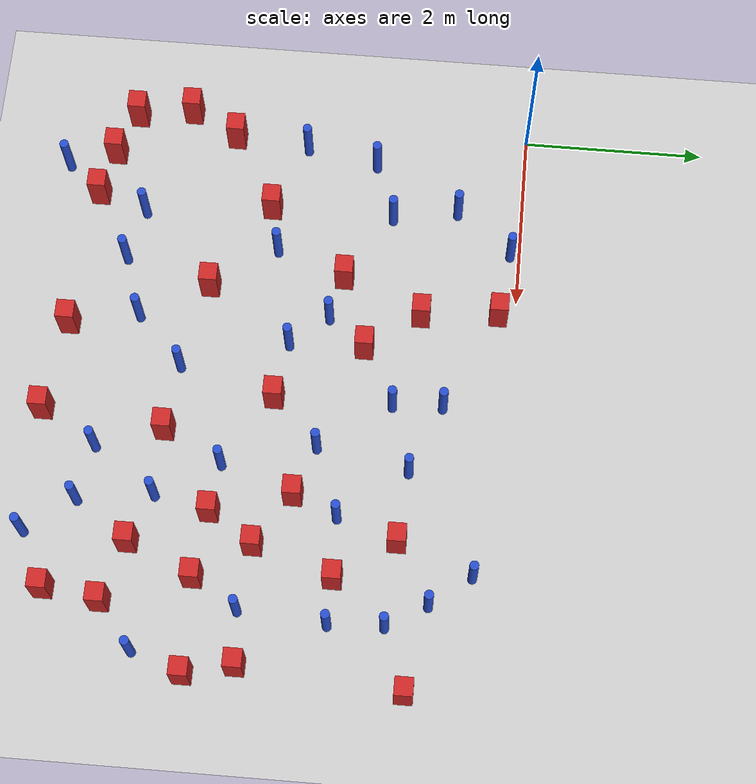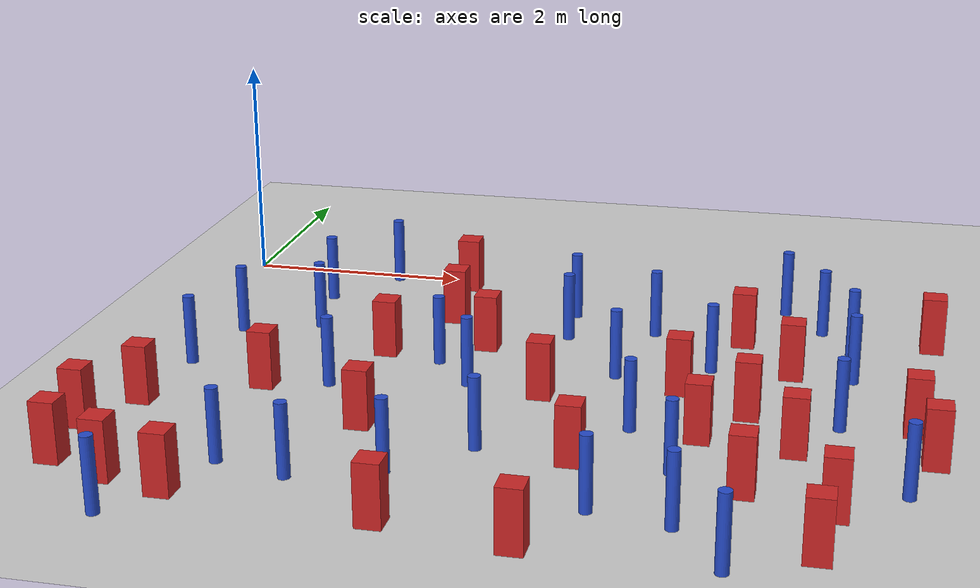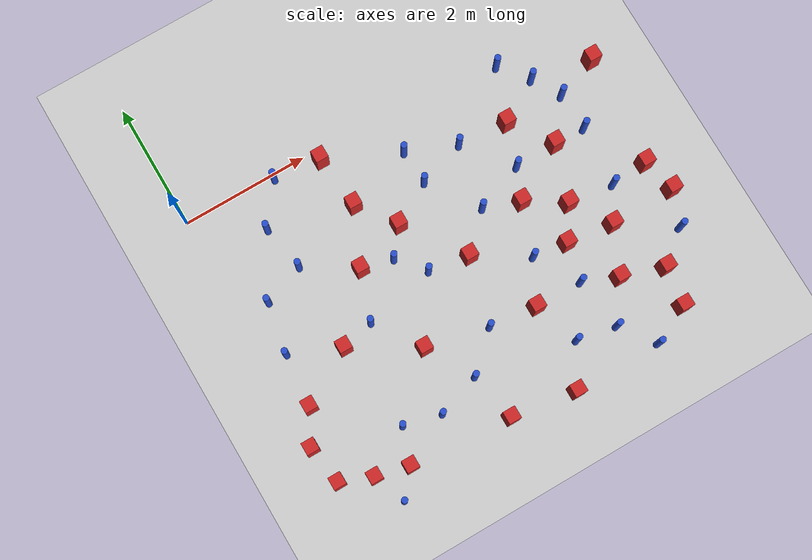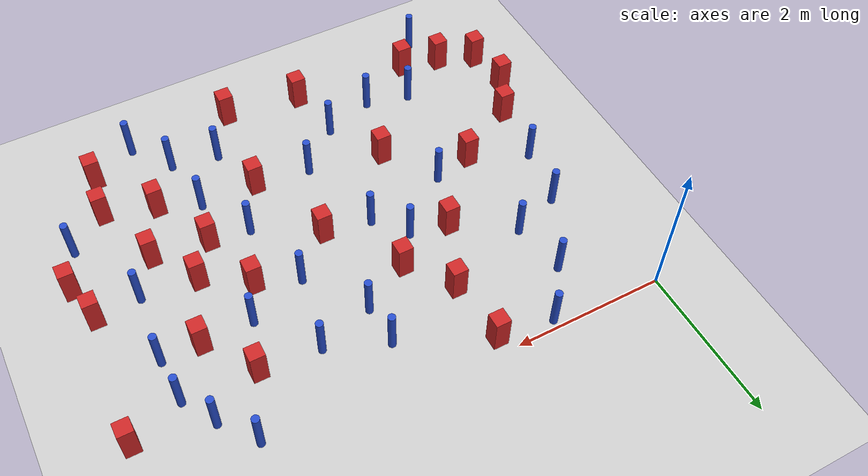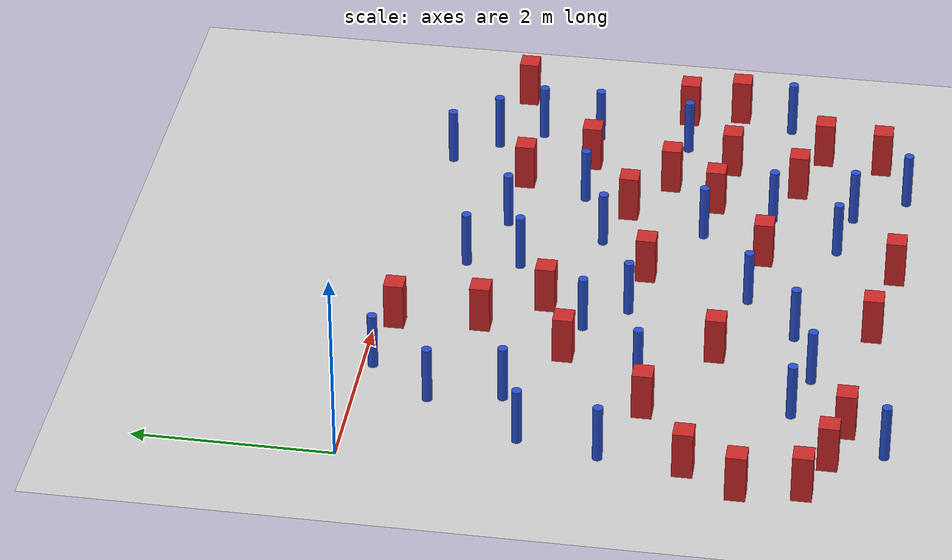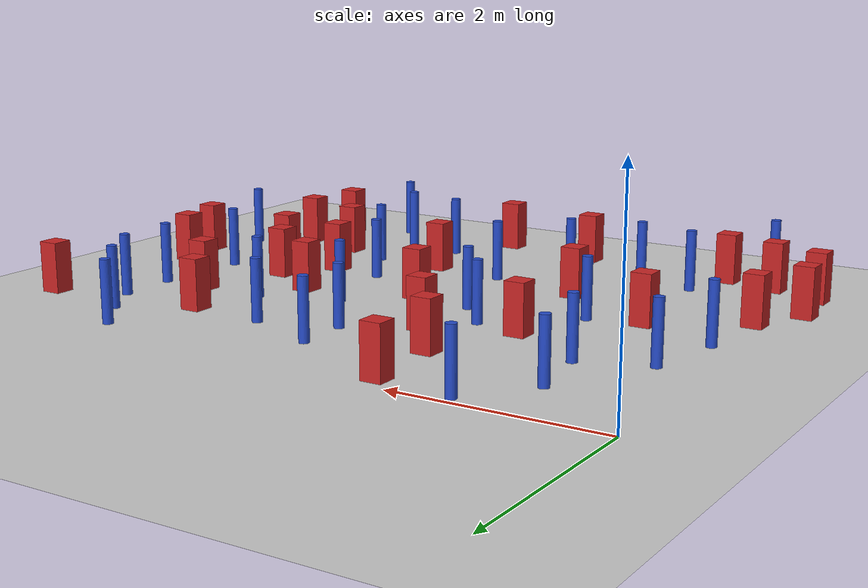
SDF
<sdf version="1.6">
 <world name="default">
  <model name="ground_plane">
   <static>1</static>
   <link name="link">
    <collision name="collision">
     <geometry><plane><normal>0 0 1</normal><size>100 100</size></plane></geometry>
     <surface><friction><ode><mu>100</mu><mu2>50</mu2></ode></friction></surface>
    </collision>
    <visual name="visual">
     <cast_shadows>0</cast_shadows>
     <geometry><plane><normal>0 0 1</normal><size>100 100</size></plane></geometry>
     <material>
      <ambient>1.0 1.0 1.0 1.0</ambient>
      <diffuse>0.8 0.8 0.8 1.0</diffuse>
      <specular>0.01 0.01 0.01 1.000000</specular>
     </material>
    </visual>
   </link>
  </model>
  <model name="square_post_obstacle2">
   <static>true</static>
   <pose>5.09710268131 -3.95281234006 8.22691968438e-08 7.22125133819e-06 -7.54495500217e-07 2.29674213826e-05</pose>
   <link name="link">
    <pose>0 0 0.25 0 -0 0</pose>
    <inertial>
     <mass>100</mass>
     <inertia>
      <ixx>0.166667</ixx>
      <ixy>0</ixy>
      <ixz>0</ixz>
      <iyy>0.166667</iyy>
      <iyz>0</iyz>
      <izz>0.166667</izz>
     </inertia>
    </inertial>
    <collision name="collision"><geometry><box><size>.2 .2 .5</size></box></geometry></collision>
    <visual name="visual">
     <geometry><box><size>.2 .2 .5</size></box></geometry>
     <material>
      <script><name>Gazebo/Red</name><uri>file://media/materials/scripts/gazebo.material</uri></script>
     </material>
    </visual>
   </link>
  </model>
  <model name="square_post_obstacle4">
   <static>true</static>
   <pose>1.05407559026 -4.77953565677 8.22691968438e-08 7.2212513382e-06 -7.54495500217e-07 2.29674213826e-05</pose>
   <link name="link">
    <pose>0 0 0.25 0 -0 0</pose>
    <inertial>
     <mass>100</mass>
     <inertia>
      <ixx>0.166667</ixx>
      <ixy>0</ixy>
      <ixz>0</ixz>
      <iyy>0.166667</iyy>
      <iyz>0</iyz>
      <izz>0.166667</izz>
     </inertia>
    </inertial>
    <collision name="collision"><geometry><box><size>.2 .2 .5</size></box></geometry></collision>
    <visual name="visual">
     <geometry><box><size>.2 .2 .5</size></box></geometry>
     <material>
      <script><name>Gazebo/Red</name><uri>file://media/materials/scripts/gazebo.material</uri></script>
     </material>
    </visual>
   </link>
  </model>
  <model name="pole_obstacle4">
   <static>true</static>
   <pose>3.890656895 -2.05234578948 2.88873142074e-08 -9.90536690232e-09 4.6021994898e-07 -1.20965994968e-07</pose>
   <link name="link">
    <pose>0 0 0.3 0 -0 0</pose>
    <inertial>
     <mass>1</mass>
     <inertia><ixx>0.145833</ixx><ixy>0</ixy><ixz>0</ixz><iyy>0.145833</iyy><iyz>0</iyz><izz>0.125</izz></inertia>
    </inertial>
    <collision name="collision">
     <geometry><cylinder><radius>0.05</radius><length>.6</length></cylinder></geometry>
    </collision>
    <visual name="visual">
     <geometry><cylinder><radius>0.05</radius><length>.6</length></cylinder></geometry>
     <material>
      <script><name>Gazebo/Blue</name><uri>file://media/materials/scripts/gazebo.material</uri></script>
     </material>
    </visual>
   </link>
  </model>
  <model name="pole_obstacle6">
   <static>true</static>
   <pose>0.981375714166 -0.723780105784 2.88873142074e-08 -9.90536689596e-09 4.60219948995e-07 -1.20965994957e-07</pose>
   <link name="link">
    <pose>0 0 0.3 0 -0 0</pose>
    <inertial>
     <mass>1</mass>
     <inertia><ixx>0.145833</ixx><ixy>0</ixy><ixz>0</ixz><iyy>0.145833</iyy><iyz>0</iyz><izz>0.125</izz></inertia>
    </inertial>
    <collision name="collision">
     <geometry><cylinder><radius>0.05</radius><length>.6</length></cylinder></geometry>
    </collision>
    <visual name="visual">
     <geometry><cylinder><radius>0.05</radius><length>.6</length></cylinder></geometry>
     <material>
      <script><name>Gazebo/Blue</name><uri>file://media/materials/scripts/gazebo.material</uri></script>
     </material>
    </visual>
   </link>
  </model>
  <model name="pole_obstacle9">
   <static>true</static>
   <pose>0.721651293033 -5.1782673412 2.88873142074e-08 -9.90536689661e-09 4.60219948993e-07 -1.20965994957e-07</pose>
   <link name="link">
    <pose>0 0 0.3 0 -0 0</pose>
    <inertial>
     <mass>1</mass>
     <inertia><ixx>0.145833</ixx><ixy>0</ixy><ixz>0</ixz><iyy>0.145833</iyy><iyz>0</iyz><izz>0.125</izz></inertia>
    </inertial>
    <collision name="collision">
     <geometry><cylinder><radius>0.05</radius><length>.6</length></cylinder></geometry>
    </collision>
    <visual name="visual">
     <geometry><cylinder><radius>0.05</radius><length>.6</length></cylinder></geometry>
     <material>
      <script><name>Gazebo/Blue</name><uri>file://media/materials/scripts/gazebo.material</uri></script>
     </material>
    </visual>
   </link>
  </model>
  <model name="square_post_obstacle17">
   <static>true</static>
   <pose>5.76063728674 -4.1655559737 8.22691968438e-08 7.2212513382e-06 -7.54495500217e-07 2.29674213826e-05</pose>
   <link name="link">
    <pose>0 0 0.25 0 -0 0</pose>
    <inertial>
     <mass>100</mass>
     <inertia>
      <ixx>0.166667</ixx>
      <ixy>0</ixy>
      <ixz>0</ixz>
      <iyy>0.166667</iyy>
      <iyz>0</iyz>
      <izz>0.166667</izz>
     </inertia>
    </inertial>
    <collision name="collision"><geometry><box><size>.2 .2 .5</size></box></geometry></collision>
    <visual name="visual">
     <geometry><box><size>.2 .2 .5</size></box></geometry>
     <material>
      <script><name>Gazebo/Red</name><uri>file://media/materials/scripts/gazebo.material</uri></script>
     </material>
    </visual>
   </link>
  </model>
  <model name="pole_obstacle13">
   <static>true</static>
   <pose>4.67971651499 -4.56127696878 2.88873142074e-08 -9.90536690842e-09 4.60219948965e-07 -1.20965994976e-07</pose>
   <link name="link">
    <pose>0 0 0.3 0 -0 0</pose>
    <inertial>
     <mass>1</mass>
     <inertia><ixx>0.145833</ixx><ixy>0</ixy><ixz>0</ixz><iyy>0.145833</iyy><iyz>0</iyz><izz>0.125</izz></inertia>
    </inertial>
    <collision name="collision">
     <geometry><cylinder><radius>0.05</radius><length>.6</length></cylinder></geometry>
    </collision>
    <visual name="visual">
     <geometry><cylinder><radius>0.05</radius><length>.6</length></cylinder></geometry>
     <material>
      <script><name>Gazebo/Blue</name><uri>file://media/materials/scripts/gazebo.material</uri></script>
     </material>
    </visual>
   </link>
  </model>
  <model name="pole_obstacle16">
   <static>true</static>
   <pose>3.32132167801 -0.72724868222 2.88873142074e-08 -9.90536689285e-09 4.60219949002e-07 -1.20965994953e-07</pose>
   <link name="link">
    <pose>0 0 0.3 0 -0 0</pose>
    <inertial>
     <mass>1</mass>
     <inertia><ixx>0.145833</ixx><ixy>0</ixy><ixz>0</ixz><iyy>0.145833</iyy><iyz>0</iyz><izz>0.125</izz></inertia>
    </inertial>
    <collision name="collision">
     <geometry><cylinder><radius>0.05</radius><length>.6</length></cylinder></geometry>
    </collision>
    <visual name="visual">
     <geometry><cylinder><radius>0.05</radius><length>.6</length></cylinder></geometry>
     <material>
      <script><name>Gazebo/Blue</name><uri>file://media/materials/scripts/gazebo.material</uri></script>
     </material>
    </visual>
   </link>
  </model>
  <model name="pole_obstacle17">
   <static>true</static>
   <pose>2.37395274039 -2.05262754893 2.88873142074e-08 -9.90536690232e-09 4.6021994898e-07 -1.20965994968e-07</pose>
   <link name="link">
    <pose>0 0 0.3 0 -0 0</pose>
    <inertial>
     <mass>1</mass>
     <inertia><ixx>0.145833</ixx><ixy>0</ixy><ixz>0</ixz><iyy>0.145833</iyy><iyz>0</iyz><izz>0.125</izz></inertia>
    </inertial>
    <collision name="collision">
     <geometry><cylinder><radius>0.05</radius><length>.6</length></cylinder></geometry>
    </collision>
    <visual name="visual">
     <geometry><cylinder><radius>0.05</radius><length>.6</length></cylinder></geometry>
     <material>
      <script><name>Gazebo/Blue</name><uri>file://media/materials/scripts/gazebo.material</uri></script>
     </material>
    </visual>
   </link>
  </model>
  <model name="square_post_obstacle28">
   <static>true</static>
   <pose>2.27031652678 -1.04451664311 8.22691968438e-08 7.2212513382e-06 -7.54495500217e-07 2.29674213826e-05</pose>
   <link name="link">
    <pose>0 0 0.25 0 -0 0</pose>
    <inertial>
     <mass>100</mass>
     <inertia>
      <ixx>0.166667</ixx>
      <ixy>0</ixy>
      <ixz>0</ixz>
      <iyy>0.166667</iyy>
      <iyz>0</iyz>
      <izz>0.166667</izz>
     </inertia>
    </inertial>
    <collision name="collision"><geometry><box><size>.2 .2 .5</size></box></geometry></collision>
    <visual name="visual">
     <geometry><box><size>.2 .2 .5</size></box></geometry>
     <material>
      <script><name>Gazebo/Red</name><uri>file://media/materials/scripts/gazebo.material</uri></script>
     </material>
    </visual>
   </link>
  </model>
  <model name="pole_obstacle27">
   <static>true</static>
   <pose>5.82997563738 -1.7649319072 2.88873142074e-08 -9.90536689445e-09 4.60219948999e-07 -1.20965994956e-07</pose>
   <link name="link">
    <pose>0 0 0.3 0 -0 0</pose>
    <inertial>
     <mass>1</mass>
     <inertia><ixx>0.145833</ixx><ixy>0</ixy><ixz>0</ixz><iyy>0.145833</iyy><iyz>0</iyz><izz>0.125</izz></inertia>
    </inertial>
    <collision name="collision">
     <geometry><cylinder><radius>0.05</radius><length>.6</length></cylinder></geometry>
    </collision>
    <visual name="visual">
     <geometry><cylinder><radius>0.05</radius><length>.6</length></cylinder></geometry>
     <material>
      <script><name>Gazebo/Blue</name><uri>file://media/materials/scripts/gazebo.material</uri></script>
     </material>
    </visual>
   </link>
  </model>
  <model name="pole_obstacle29">
   <static>true</static>
   <pose>2.72051264375 -2.46708854853 2.88873142074e-08 -9.90536690232e-09 4.6021994898e-07 -1.20965994968e-07</pose>
   <link name="link">
    <pose>0 0 0.3 0 -0 0</pose>
    <inertial>
     <mass>1</mass>
     <inertia><ixx>0.145833</ixx><ixy>0</ixy><ixz>0</ixz><iyy>0.145833</iyy><iyz>0</iyz><izz>0.125</izz></inertia>
    </inertial>
    <collision name="collision">
     <geometry><cylinder><radius>0.05</radius><length>.6</length></cylinder></geometry>
    </collision>
    <visual name="visual">
     <geometry><cylinder><radius>0.05</radius><length>.6</length></cylinder></geometry>
     <material>
      <script><name>Gazebo/Blue</name><uri>file://media/materials/scripts/gazebo.material</uri></script>
     </material>
    </visual>
   </link>
  </model>
  <model name="pole_obstacle31">
   <static>true</static>
   <pose>4.06190309578 -4.44371405999 2.88873142074e-08 -9.90536690842e-09 4.60219948965e-07 -1.20965994976e-07</pose>
   <link name="link">
    <pose>0 0 0.3 0 -0 0</pose>
    <inertial>
     <mass>1</mass>
     <inertia><ixx>0.145833</ixx><ixy>0</ixy><ixz>0</ixz><iyy>0.145833</iyy><iyz>0</iyz><izz>0.125</izz></inertia>
    </inertial>
    <collision name="collision">
     <geometry><cylinder><radius>0.05</radius><length>.6</length></cylinder></geometry>
    </collision>
    <visual name="visual">
     <geometry><cylinder><radius>0.05</radius><length>.6</length></cylinder></geometry>
     <material>
      <script><name>Gazebo/Blue</name><uri>file://media/materials/scripts/gazebo.material</uri></script>
     </material>
    </visual>
   </link>
  </model>
  <model name="square_post_obstacle35">
   <static>true</static>
   <pose>2.19126512415 -0.191991495189 8.22691968438e-08 7.2212513382e-06 -7.54495500217e-07 2.29674213826e-05</pose>
   <link name="link">
    <pose>0 0 0.25 0 -0 0</pose>
    <inertial>
     <mass>100</mass>
     <inertia>
      <ixx>0.166667</ixx>
      <ixy>0</ixy>
      <ixz>0</ixz>
      <iyy>0.166667</iyy>
      <iyz>0</iyz>
      <izz>0.166667</izz>
     </inertia>
    </inertial>
    <collision name="collision"><geometry><box><size>.2 .2 .5</size></box></geometry></collision>
    <visual name="visual">
     <geometry><box><size>.2 .2 .5</size></box></geometry>
     <material>
      <script><name>Gazebo/Red</name><uri>file://media/materials/scripts/gazebo.material</uri></script>
     </material>
    </visual>
   </link>
  </model>
  <model name="pole_obstacle37">
   <static>true</static>
   <pose>4.56322103141 -3.73702434575 2.88873142074e-08 -9.90536690245e-09 4.6021994898e-07 -1.20965994966e-07</pose>
   <link name="link">
    <pose>0 0 0.3 0 -0 0</pose>
    <inertial>
     <mass>1</mass>
     <inertia><ixx>0.145833</ixx><ixy>0</ixy><ixz>0</ixz><iyy>0.145833</iyy><iyz>0</iyz><izz>0.125</izz></inertia>
    </inertial>
    <collision name="collision">
     <geometry><cylinder><radius>0.05</radius><length>.6</length></cylinder></geometry>
    </collision>
    <visual name="visual">
     <geometry><cylinder><radius>0.05</radius><length>.6</length></cylinder></geometry>
     <material>
      <script><name>Gazebo/Blue</name><uri>file://media/materials/scripts/gazebo.material</uri></script>
     </material>
    </visual>
   </link>
  </model>
  <model name="pole_obstacle45">
   <static>true</static>
   <pose>5.75120121353 -2.72099769237 2.88873142074e-08 -9.90536690245e-09 4.6021994898e-07 -1.20965994966e-07</pose>
   <link name="link">
    <pose>0 0 0.3 0 -0 0</pose>
    <inertial>
     <mass>1</mass>
     <inertia><ixx>0.145833</ixx><ixy>0</ixy><ixz>0</ixz><iyy>0.145833</iyy><iyz>0</iyz><izz>0.125</izz></inertia>
    </inertial>
    <collision name="collision">
     <geometry><cylinder><radius>0.05</radius><length>.6</length></cylinder></geometry>
    </collision>
    <visual name="visual">
     <geometry><cylinder><radius>0.05</radius><length>.6</length></cylinder></geometry>
     <material>
      <script><name>Gazebo/Blue</name><uri>file://media/materials/scripts/gazebo.material</uri></script>
     </material>
    </visual>
   </link>
  </model>
  <model name="square_post_obstacle43">
   <static>true</static>
   <pose>5.42882166809 -3.22063404944 8.22691968438e-08 7.2212513382e-06 -7.54495500217e-07 2.29674213826e-05</pose>
   <link name="link">
    <pose>0 0 0.25 0 -0 0</pose>
    <inertial>
     <mass>100</mass>
     <inertia>
      <ixx>0.166667</ixx>
      <ixy>0</ixy>
      <ixz>0</ixz>
      <iyy>0.166667</iyy>
      <iyz>0</iyz>
      <izz>0.166667</izz>
     </inertia>
    </inertial>
    <collision name="collision"><geometry><box><size>.2 .2 .5</size></box></geometry></collision>
    <visual name="visual">
     <geometry><box><size>.2 .2 .5</size></box></geometry>
     <material>
      <script><name>Gazebo/Red</name><uri>file://media/materials/scripts/gazebo.material</uri></script>
     </material>
    </visual>
   </link>
  </model>
  <model name="square_post_obstacle46">
   <static>true</static>
   <pose>1.0847516609 -2.81422745854 8.22691968438e-08 7.2212513382e-06 -7.54495500217e-07 2.29674213826e-05</pose>
   <link name="link">
    <pose>0 0 0.25 0 -0 0</pose>
    <inertial>
     <mass>100</mass>
     <inertia>
      <ixx>0.166667</ixx>
      <ixy>0</ixy>
      <ixz>0</ixz>
      <iyy>0.166667</iyy>
      <iyz>0</iyz>
      <izz>0.166667</izz>
     </inertia>
    </inertial>
    <collision name="collision"><geometry><box><size>.2 .2 .5</size></box></geometry></collision>
    <visual name="visual">
     <geometry><box><size>.2 .2 .5</size></box></geometry>
     <material>
      <script><name>Gazebo/Red</name><uri>file://media/materials/scripts/gazebo.material</uri></script>
     </material>
    </visual>
   </link>
  </model>
  <model name="pole_obstacle46">
   <static>true</static>
   <pose>1.82692613318 -4.38029743123 2.88873142074e-08 -9.90536689852e-09 4.60219948989e-07 -1.2096599496e-07</pose>
   <link name="link">
    <pose>0 0 0.3 0 -0 0</pose>
    <inertial>
     <mass>1</mass>
     <inertia><ixx>0.145833</ixx><ixy>0</ixy><ixz>0</ixz><iyy>0.145833</iyy><iyz>0</iyz><izz>0.125</izz></inertia>
    </inertial>
    <collision name="collision">
     <geometry><cylinder><radius>0.05</radius><length>.6</length></cylinder></geometry>
    </collision>
    <visual name="visual">
     <geometry><cylinder><radius>0.05</radius><length>.6</length></cylinder></geometry>
     <material>
      <script><name>Gazebo/Blue</name><uri>file://media/materials/scripts/gazebo.material</uri></script>
     </material>
    </visual>
   </link>
  </model>
  <model name="square_post_obstacle60">
   <static>true</static>
   <pose>3.6770736995 -5.06379997556 8.22691968438e-08 7.2212513382e-06 -7.54495500217e-07 2.29674213826e-05</pose>
   <link name="link">
    <pose>0 0 0.25 0 -0 0</pose>
    <inertial>
     <mass>100</mass>
     <inertia>
      <ixx>0.166667</ixx>
      <ixy>0</ixy>
      <ixz>0</ixz>
      <iyy>0.166667</iyy>
      <iyz>0</iyz>
      <izz>0.166667</izz>
     </inertia>
    </inertial>
    <collision name="collision"><geometry><box><size>.2 .2 .5</size></box></geometry></collision>
    <visual name="visual">
     <geometry><box><size>.2 .2 .5</size></box></geometry>
     <material>
      <script><name>Gazebo/Red</name><uri>file://media/materials/scripts/gazebo.material</uri></script>
     </material>
    </visual>
   </link>
  </model>
  <model name="pole_obstacle61">
   <static>true</static>
   <pose>1.10671477999 -1.44687079347 2.88873142074e-08 -9.90536689672e-09 4.60219948993e-07 -1.20965994959e-07</pose>
   <link name="link">
    <pose>0 0 0.3 0 -0 0</pose>
    <inertial>
     <mass>1</mass>
     <inertia><ixx>0.145833</ixx><ixy>0</ixy><ixz>0</ixz><iyy>0.145833</iyy><iyz>0</iyz><izz>0.125</izz></inertia>
    </inertial>
    <collision name="collision">
     <geometry><cylinder><radius>0.05</radius><length>.6</length></cylinder></geometry>
    </collision>
    <visual name="visual">
     <geometry><cylinder><radius>0.05</radius><length>.6</length></cylinder></geometry>
     <material>
      <script><name>Gazebo/Blue</name><uri>file://media/materials/scripts/gazebo.material</uri></script>
     </material>
    </visual>
   </link>
  </model>
  <model name="pole_obstacle62">
   <static>true</static>
   <pose>4.16106589643 -3.06153944033 2.88873142074e-08 -9.90536690245e-09 4.6021994898e-07 -1.20965994966e-07</pose>
   <link name="link">
    <pose>0 0 0.3 0 -0 0</pose>
    <inertial>
     <mass>1</mass>
     <inertia><ixx>0.145833</ixx><ixy>0</ixy><ixz>0</ixz><iyy>0.145833</iyy><iyz>0</iyz><izz>0.125</izz></inertia>
    </inertial>
    <collision name="collision">
     <geometry><cylinder><radius>0.05</radius><length>.6</length></cylinder></geometry>
    </collision>
    <visual name="visual">
     <geometry><cylinder><radius>0.05</radius><length>.6</length></cylinder></geometry>
     <material>
      <script><name>Gazebo/Blue</name><uri>file://media/materials/scripts/gazebo.material</uri></script>
     </material>
    </visual>
   </link>
  </model>
  <model name="pole_obstacle64">
   <static>true</static>
   <pose>0.456807059202 -1.68180150522 2.88873142074e-08 -9.90536689915e-09 4.60219948987e-07 -1.20965994962e-07</pose>
   <link name="link">
    <pose>0 0 0.3 0 -0 0</pose>
    <inertial>
     <mass>1</mass>
     <inertia><ixx>0.145833</ixx><ixy>0</ixy><ixz>0</ixz><iyy>0.145833</iyy><iyz>0</iyz><izz>0.125</izz></inertia>
    </inertial>
    <collision name="collision">
     <geometry><cylinder><radius>0.05</radius><length>.6</length></cylinder></geometry>
    </collision>
    <visual name="visual">
     <geometry><cylinder><radius>0.05</radius><length>.6</length></cylinder></geometry>
     <material>
      <script><name>Gazebo/Blue</name><uri>file://media/materials/scripts/gazebo.material</uri></script>
     </material>
    </visual>
   </link>
  </model>
  <model name="pole_obstacle66">
   <static>true</static>
   <pose>1.60268710735 -2.70169402759 2.88873142074e-08 -9.90536689791e-09 4.6021994899e-07 -1.20965994959e-07</pose>
   <link name="link">
    <pose>0 0 0.3 0 -0 0</pose>
    <inertial>
     <mass>1</mass>
     <inertia><ixx>0.145833</ixx><ixy>0</ixy><ixz>0</ixz><iyy>0.145833</iyy><iyz>0</iyz><izz>0.125</izz></inertia>
    </inertial>
    <collision name="collision">
     <geometry><cylinder><radius>0.05</radius><length>.6</length></cylinder></geometry>
    </collision>
    <visual name="visual">
     <geometry><cylinder><radius>0.05</radius><length>.6</length></cylinder></geometry>
     <material>
      <script><name>Gazebo/Blue</name><uri>file://media/materials/scripts/gazebo.material</uri></script>
     </material>
    </visual>
   </link>
  </model>
  <model name="pole_obstacle68">
   <static>true</static>
   <pose>1.2413119878 -4.23871865583 2.88873142074e-08 -9.90536689852e-09 4.60219948989e-07 -1.2096599496e-07</pose>
   <link name="link">
    <pose>0 0 0.3 0 -0 0</pose>
    <inertial>
     <mass>1</mass>
     <inertia><ixx>0.145833</ixx><ixy>0</ixy><ixz>0</ixz><iyy>0.145833</iyy><iyz>0</iyz><izz>0.125</izz></inertia>
    </inertial>
    <collision name="collision">
     <geometry><cylinder><radius>0.05</radius><length>.6</length></cylinder></geometry>
    </collision>
    <visual name="visual">
     <geometry><cylinder><radius>0.05</radius><length>.6</length></cylinder></geometry>
     <material>
      <script><name>Gazebo/Blue</name><uri>file://media/materials/scripts/gazebo.material</uri></script>
     </material>
    </visual>
   </link>
  </model>
  <model name="square_post_obstacle72">
   <static>true</static>
   <pose>2.09046354125 -3.4080256433 8.22691968438e-08 7.2212513382e-06 -7.54495500217e-07 2.29674213826e-05</pose>
   <link name="link">
    <pose>0 0 0.25 0 -0 0</pose>
    <inertial>
     <mass>100</mass>
     <inertia>
      <ixx>0.166667</ixx>
      <ixy>0</ixy>
      <ixz>0</ixz>
      <iyy>0.166667</iyy>
      <iyz>0</iyz>
      <izz>0.166667</izz>
     </inertia>
    </inertial>
    <collision name="collision"><geometry><box><size>.2 .2 .5</size></box></geometry></collision>
    <visual name="visual">
     <geometry><box><size>.2 .2 .5</size></box></geometry>
     <material>
      <script><name>Gazebo/Red</name><uri>file://media/materials/scripts/gazebo.material</uri></script>
     </material>
    </visual>
   </link>
  </model>
  <model name="square_post_obstacle76">
   <static>true</static>
   <pose>2.65617210711 -4.9125082001 8.22691968438e-08 7.2212513382e-06 -7.54495500217e-07 2.29674213826e-05</pose>
   <link name="link">
    <pose>0 0 0.25 0 -0 0</pose>
    <inertial>
     <mass>100</mass>
     <inertia>
      <ixx>0.166667</ixx>
      <ixy>0</ixy>
      <ixz>0</ixz>
      <iyy>0.166667</iyy>
      <iyz>0</iyz>
      <izz>0.166667</izz>
     </inertia>
    </inertial>
    <collision name="collision"><geometry><box><size>.2 .2 .5</size></box></geometry></collision>
    <visual name="visual">
     <geometry><box><size>.2 .2 .5</size></box></geometry>
     <material>
      <script><name>Gazebo/Red</name><uri>file://media/materials/scripts/gazebo.material</uri></script>
     </material>
    </visual>
   </link>
  </model>
  <model name="pole_obstacle74">
   <static>true</static>
   <pose>4.08978032399 -1.03998817567 2.88873142074e-08 -9.90536689582e-09 4.60219948995e-07 -1.20965994957e-07</pose>
   <link name="link">
    <pose>0 0 0.3 0 -0 0</pose>
    <inertial>
     <mass>1</mass>
     <inertia><ixx>0.145833</ixx><ixy>0</ixy><ixz>0</ixz><iyy>0.145833</iyy><iyz>0</iyz><izz>0.125</izz></inertia>
    </inertial>
    <collision name="collision">
     <geometry><cylinder><radius>0.05</radius><length>.6</length></cylinder></geometry>
    </collision>
    <visual name="visual">
     <geometry><cylinder><radius>0.05</radius><length>.6</length></cylinder></geometry>
     <material>
      <script><name>Gazebo/Blue</name><uri>file://media/materials/scripts/gazebo.material</uri></script>
     </material>
    </visual>
   </link>
  </model>
  <model name="pole_obstacle79">
   <static>true</static>
   <pose>5.1968013264 -0.278636411946 2.88873142074e-08 -9.9053668927e-09 4.60219949003e-07 -1.20965994954e-07</pose>
   <link name="link">
    <pose>0 0 0.3 0 -0 0</pose>
    <inertial>
     <mass>1</mass>
     <inertia><ixx>0.145833</ixx><ixy>0</ixy><ixz>0</ixz><iyy>0.145833</iyy><iyz>0</iyz><izz>0.125</izz></inertia>
    </inertial>
    <collision name="collision">
     <geometry><cylinder><radius>0.05</radius><length>.6</length></cylinder></geometry>
    </collision>
    <visual name="visual">
     <geometry><cylinder><radius>0.05</radius><length>.6</length></cylinder></geometry>
     <material>
      <script><name>Gazebo/Blue</name><uri>file://media/materials/scripts/gazebo.material</uri></script>
     </material>
    </visual>
   </link>
  </model>
  <model name="square_post_obstacle79">
   <static>true</static>
   <pose>6.46124460619 -3.21199816023 8.22691968438e-08 7.2212513382e-06 -7.54495500217e-07 2.29674213826e-05</pose>
   <link name="link">
    <pose>0 0 0.25 0 -0 0</pose>
    <inertial>
     <mass>100</mass>
     <inertia>
      <ixx>0.166667</ixx>
      <ixy>0</ixy>
      <ixz>0</ixz>
      <iyy>0.166667</iyy>
      <iyz>0</iyz>
      <izz>0.166667</izz>
     </inertia>
    </inertial>
    <collision name="collision"><geometry><box><size>.2 .2 .5</size></box></geometry></collision>
    <visual name="visual">
     <geometry><box><size>.2 .2 .5</size></box></geometry>
     <material>
      <script><name>Gazebo/Red</name><uri>file://media/materials/scripts/gazebo.material</uri></script>
     </material>
    </visual>
   </link>
  </model>
  <model name="pole_obstacle95">
   <static>true</static>
   <pose>5.543106415 -0.721377329756 2.88873142074e-08 -9.90536689837e-09 4.60219948989e-07 -1.2096599496e-07</pose>
   <link name="link">
    <pose>0 0 0.3 0 -0 0</pose>
    <inertial>
     <mass>1</mass>
     <inertia><ixx>0.145833</ixx><ixy>0</ixy><ixz>0</ixz><iyy>0.145833</iyy><iyz>0</iyz><izz>0.125</izz></inertia>
    </inertial>
    <collision name="collision">
     <geometry><cylinder><radius>0.05</radius><length>.6</length></cylinder></geometry>
    </collision>
    <visual name="visual">
     <geometry><cylinder><radius>0.05</radius><length>.6</length></cylinder></geometry>
     <material>
      <script><name>Gazebo/Blue</name><uri>file://media/materials/scripts/gazebo.material</uri></script>
     </material>
    </visual>
   </link>
  </model>
  <model name="pole_obstacle97">
   <static>true</static>
   <pose>4.65893832936 -1.7659768664 2.88873142074e-08 -9.90536689445e-09 4.60219948999e-07 -1.20965994956e-07</pose>
   <link name="link">
    <pose>0 0 0.3 0 -0 0</pose>
    <inertial>
     <mass>1</mass>
     <inertia><ixx>0.145833</ixx><ixy>0</ixy><ixz>0</ixz><iyy>0.145833</iyy><iyz>0</iyz><izz>0.125</izz></inertia>
    </inertial>
    <collision name="collision">
     <geometry><cylinder><radius>0.05</radius><length>.6</length></cylinder></geometry>
    </collision>
    <visual name="visual">
     <geometry><cylinder><radius>0.05</radius><length>.6</length></cylinder></geometry>
     <material>
      <script><name>Gazebo/Blue</name><uri>file://media/materials/scripts/gazebo.material</uri></script>
     </material>
    </visual>
   </link>
  </model>
  <model name="square_post_obstacle89">
   <static>true</static>
   <pose>5.02857904153 -2.62557871613 8.22691968438e-08 7.2212513382e-06 -7.54495500217e-07 2.29674213826e-05</pose>
   <link name="link">
    <pose>0 0 0.25 0 -0 0</pose>
    <inertial>
     <mass>100</mass>
     <inertia>
      <ixx>0.166667</ixx>
      <ixy>0</ixy>
      <ixz>0</ixz>
      <iyy>0.166667</iyy>
      <iyz>0</iyz>
      <izz>0.166667</izz>
     </inertia>
    </inertial>
    <collision name="collision"><geometry><box><size>.2 .2 .5</size></box></geometry></collision>
    <visual name="visual">
     <geometry><box><size>.2 .2 .5</size></box></geometry>
     <material>
      <script><name>Gazebo/Red</name><uri>file://media/materials/scripts/gazebo.material</uri></script>
     </material>
    </visual>
   </link>
  </model>
  <model name="pole_obstacle102">
   <static>true</static>
   <pose>3.34768873853 -1.27609010139 2.88873142074e-08 -9.90536689395e-09 4.60219949e-07 -1.20965994953e-07</pose>
   <link name="link">
    <pose>0 0 0.3 0 -0 0</pose>
    <inertial>
     <mass>1</mass>
     <inertia><ixx>0.145833</ixx><ixy>0</ixy><ixz>0</ixz><iyy>0.145833</iyy><iyz>0</iyz><izz>0.125</izz></inertia>
    </inertial>
    <collision name="collision">
     <geometry><cylinder><radius>0.05</radius><length>.6</length></cylinder></geometry>
    </collision>
    <visual name="visual">
     <geometry><cylinder><radius>0.05</radius><length>.6</length></cylinder></geometry>
     <material>
      <script><name>Gazebo/Blue</name><uri>file://media/materials/scripts/gazebo.material</uri></script>
     </material>
    </visual>
   </link>
  </model>
  <model name="square_post_obstacle93">
   <static>true</static>
   <pose>0.529232939214 -4.65653465757 8.22691968438e-08 7.22125133819e-06 -7.54495500217e-07 2.29674213826e-05</pose>
   <link name="link">
    <pose>0 0 0.25 0 -0 0</pose>
    <inertial>
     <mass>100</mass>
     <inertia>
      <ixx>0.166667</ixx>
      <ixy>0</ixy>
      <ixz>0</ixz>
      <iyy>0.166667</iyy>
      <iyz>0</iyz>
      <izz>0.166667</izz>
     </inertia>
    </inertial>
    <collision name="collision"><geometry><box><size>.2 .2 .5</size></box></geometry></collision>
    <visual name="visual">
     <geometry><box><size>.2 .2 .5</size></box></geometry>
     <material>
      <script><name>Gazebo/Red</name><uri>file://media/materials/scripts/gazebo.material</uri></script>
     </material>
    </visual>
   </link>
  </model>
  <model name="square_post_obstacle96">
   <static>true</static>
   <pose>3.35497963129 -2.56576581159 8.22691968438e-08 7.2212513382e-06 -7.54495500217e-07 2.29674213826e-05</pose>
   <link name="link">
    <pose>0 0 0.25 0 -0 0</pose>
    <inertial>
     <mass>100</mass>
     <inertia>
      <ixx>0.166667</ixx>
      <ixy>0</ixy>
      <ixz>0</ixz>
      <iyy>0.166667</iyy>
      <iyz>0</iyz>
      <izz>0.166667</izz>
     </inertia>
    </inertial>
    <collision name="collision"><geometry><box><size>.2 .2 .5</size></box></geometry></collision>
    <visual name="visual">
     <geometry><box><size>.2 .2 .5</size></box></geometry>
     <material>
      <script><name>Gazebo/Red</name><uri>file://media/materials/scripts/gazebo.material</uri></script>
     </material>
    </visual>
   </link>
  </model>
  <model name="pole_obstacle118">
   <static>true</static>
   <pose>1.44917266998 -0.102726176995 2.88873142074e-08 -9.90536689715e-09 4.60219948992e-07 -1.20965994959e-07</pose>
   <link name="link">
    <pose>0 0 0.3 0 -0 0</pose>
    <inertial>
     <mass>1</mass>
     <inertia><ixx>0.145833</ixx><ixy>0</ixy><ixz>0</ixz><iyy>0.145833</iyy><iyz>0</iyz><izz>0.125</izz></inertia>
    </inertial>
    <collision name="collision">
     <geometry><cylinder><radius>0.05</radius><length>.6</length></cylinder></geometry>
    </collision>
    <visual name="visual">
     <geometry><cylinder><radius>0.05</radius><length>.6</length></cylinder></geometry>
     <material>
      <script><name>Gazebo/Blue</name><uri>file://media/materials/scripts/gazebo.material</uri></script>
     </material>
    </visual>
   </link>
  </model>
  <model name="square_post_obstacle108">
   <static>true</static>
   <pose>0.225705087076 -3.30919308995 8.22691968438e-08 7.22125133819e-06 -7.54495500217e-07 2.29674213826e-05</pose>
   <link name="link">
    <pose>0 0 0.25 0 -0 0</pose>
    <inertial>
     <mass>100</mass>
     <inertia>
      <ixx>0.166667</ixx>
      <ixy>0</ixy>
      <ixz>0</ixz>
      <iyy>0.166667</iyy>
      <iyz>0</iyz>
      <izz>0.166667</izz>
     </inertia>
    </inertial>
    <collision name="collision"><geometry><box><size>.2 .2 .5</size></box></geometry></collision>
    <visual name="visual">
     <geometry><box><size>.2 .2 .5</size></box></geometry>
     <material>
      <script><name>Gazebo/Red</name><uri>file://media/materials/scripts/gazebo.material</uri></script>
     </material>
    </visual>
   </link>
  </model>
  <model name="pole_obstacle131">
   <static>true</static>
   <pose>5.07010692626 -5.08347385342 2.88873142074e-08 -9.90536690842e-09 4.60219948965e-07 -1.20965994976e-07</pose>
   <link name="link">
    <pose>0 0 0.3 0 -0 0</pose>
    <inertial>
     <mass>1</mass>
     <inertia><ixx>0.145833</ixx><ixy>0</ixy><ixz>0</ixz><iyy>0.145833</iyy><iyz>0</iyz><izz>0.125</izz></inertia>
    </inertial>
    <collision name="collision">
     <geometry><cylinder><radius>0.05</radius><length>.6</length></cylinder></geometry>
    </collision>
    <visual name="visual">
     <geometry><cylinder><radius>0.05</radius><length>.6</length></cylinder></geometry>
     <material>
      <script><name>Gazebo/Blue</name><uri>file://media/materials/scripts/gazebo.material</uri></script>
     </material>
    </visual>
   </link>
  </model>
  <model name="square_post_obstacle123">
   <static>true</static>
   <pose>6.33108993041 -2.67142642479 8.22691968438e-08 7.2212513382e-06 -7.54495500217e-07 2.29674213826e-05</pose>
   <link name="link">
    <pose>0 0 0.25 0 -0 0</pose>
    <inertial>
     <mass>100</mass>
     <inertia>
      <ixx>0.166667</ixx>
      <ixy>0</ixy>
      <ixz>0</ixz>
      <iyy>0.166667</iyy>
      <iyz>0</iyz>
      <izz>0.166667</izz>
     </inertia>
    </inertial>
    <collision name="collision"><geometry><box><size>.2 .2 .5</size></box></geometry></collision>
    <visual name="visual">
     <geometry><box><size>.2 .2 .5</size></box></geometry>
     <material>
      <script><name>Gazebo/Red</name><uri>file://media/materials/scripts/gazebo.material</uri></script>
     </material>
    </visual>
   </link>
  </model>
  <model name="pole_obstacle140">
   <static>true</static>
   <pose>6.26744553591 -3.77533444908 2.88873142074e-08 -9.90536690245e-09 4.6021994898e-07 -1.20965994966e-07</pose>
   <link name="link">
    <pose>0 0 0.3 0 -0 0</pose>
    <inertial>
     <mass>1</mass>
     <inertia><ixx>0.145833</ixx><ixy>0</ixy><ixz>0</ixz><iyy>0.145833</iyy><iyz>0</iyz><izz>0.125</izz></inertia>
    </inertial>
    <collision name="collision">
     <geometry><cylinder><radius>0.05</radius><length>.6</length></cylinder></geometry>
    </collision>
    <visual name="visual">
     <geometry><cylinder><radius>0.05</radius><length>.6</length></cylinder></geometry>
     <material>
      <script><name>Gazebo/Blue</name><uri>file://media/materials/scripts/gazebo.material</uri></script>
     </material>
    </visual>
   </link>
  </model>
  <model name="square_post_obstacle133">
   <static>true</static>
   <pose>4.44354275063 -2.25223430242 8.22691968438e-08 7.2212513382e-06 -7.54495500217e-07 2.29674213826e-05</pose>
   <link name="link">
    <pose>0 0 0.25 0 -0 0</pose>
    <inertial>
     <mass>100</mass>
     <inertia>
      <ixx>0.166667</ixx>
      <ixy>0</ixy>
      <ixz>0</ixz>
      <iyy>0.166667</iyy>
      <iyz>0</iyz>
      <izz>0.166667</izz>
     </inertia>
    </inertial>
    <collision name="collision"><geometry><box><size>.2 .2 .5</size></box></geometry></collision>
    <visual name="visual">
     <geometry><box><size>.2 .2 .5</size></box></geometry>
     <material>
      <script><name>Gazebo/Red</name><uri>file://media/materials/scripts/gazebo.material</uri></script>
     </material>
    </visual>
   </link>
  </model>
  <model name="pole_obstacle155">
   <static>true</static>
   <pose>3.07046309388 -3.63174816739 2.88873142074e-08 -9.90536690232e-09 4.6021994898e-07 -1.20965994968e-07</pose>
   <link name="link">
    <pose>0 0 0.3 0 -0 0</pose>
    <inertial>
     <mass>1</mass>
     <inertia><ixx>0.145833</ixx><ixy>0</ixy><ixz>0</ixz><iyy>0.145833</iyy><iyz>0</iyz><izz>0.125</izz></inertia>
    </inertial>
    <collision name="collision">
     <geometry><cylinder><radius>0.05</radius><length>.6</length></cylinder></geometry>
    </collision>
    <visual name="visual">
     <geometry><cylinder><radius>0.05</radius><length>.6</length></cylinder></geometry>
     <material>
      <script><name>Gazebo/Blue</name><uri>file://media/materials/scripts/gazebo.material</uri></script>
     </material>
    </visual>
   </link>
  </model>
  <model name="square_post_obstacle147">
   <static>true</static>
   <pose>5.66712692344 -4.78100158308 8.22691968438e-08 7.22125133819e-06 -7.54495500217e-07 2.29674213826e-05</pose>
   <link name="link">
    <pose>0 0 0.25 0 -0 0</pose>
    <inertial>
     <mass>100</mass>
     <inertia>
      <ixx>0.166667</ixx>
      <ixy>0</ixy>
      <ixz>0</ixz>
      <iyy>0.166667</iyy>
      <iyz>0</iyz>
      <izz>0.166667</izz>
     </inertia>
    </inertial>
    <collision name="collision"><geometry><box><size>.2 .2 .5</size></box></geometry></collision>
    <visual name="visual">
     <geometry><box><size>.2 .2 .5</size></box></geometry>
     <material>
      <script><name>Gazebo/Red</name><uri>file://media/materials/scripts/gazebo.material</uri></script>
     </material>
    </visual>
   </link>
  </model>
  <model name="square_post_obstacle150">
   <static>true</static>
   <pose>2.6989249008 -1.63604999257 8.22691968438e-08 7.2212513382e-06 -7.54495500217e-07 2.29674213826e-05</pose>
   <link name="link">
    <pose>0 0 0.25 0 -0 0</pose>
    <inertial>
     <mass>100</mass>
     <inertia>
      <ixx>0.166667</ixx>
      <ixy>0</ixy>
      <ixz>0</ixz>
      <iyy>0.166667</iyy>
      <iyz>0</iyz>
      <izz>0.166667</izz>
     </inertia>
    </inertial>
    <collision name="collision"><geometry><box><size>.2 .2 .5</size></box></geometry></collision>
    <visual name="visual">
     <geometry><box><size>.2 .2 .5</size></box></geometry>
     <material>
      <script><name>Gazebo/Red</name><uri>file://media/materials/scripts/gazebo.material</uri></script>
     </material>
    </visual>
   </link>
  </model>
  <model name="square_post_obstacle164">
   <static>true</static>
   <pose>6.48480025922 -0.905776424994 8.22691968438e-08 7.2212513382e-06 -7.54495500217e-07 2.29674213826e-05</pose>
   <link name="link">
    <pose>0 0 0.25 0 -0 0</pose>
    <inertial>
     <mass>100</mass>
     <inertia>
      <ixx>0.166667</ixx>
      <ixy>0</ixy>
      <ixz>0</ixz>
      <iyy>0.166667</iyy>
      <iyz>0</iyz>
      <izz>0.166667</izz>
     </inertia>
    </inertial>
    <collision name="collision"><geometry><box><size>.2 .2 .5</size></box></geometry></collision>
    <visual name="visual">
     <geometry><box><size>.2 .2 .5</size></box></geometry>
     <material>
      <script><name>Gazebo/Red</name><uri>file://media/materials/scripts/gazebo.material</uri></script>
     </material>
    </visual>
   </link>
  </model>
  <model name="square_post_obstacle173">
   <static>true</static>
   <pose>0.0340066370885 -4.45669147157 8.22691968438e-08 7.22125133819e-06 -7.54495500217e-07 2.29674213826e-05</pose>
   <link name="link">
    <pose>0 0 0.25 0 -0 0</pose>
    <inertial>
     <mass>100</mass>
     <inertia>
      <ixx>0.166667</ixx>
      <ixy>0</ixy>
      <ixz>0</ixz>
      <iyy>0.166667</iyy>
      <iyz>0</iyz>
      <izz>0.166667</izz>
     </inertia>
    </inertial>
    <collision name="collision"><geometry><box><size>.2 .2 .5</size></box></geometry></collision>
    <visual name="visual">
     <geometry><box><size>.2 .2 .5</size></box></geometry>
     <material>
      <script><name>Gazebo/Red</name><uri>file://media/materials/scripts/gazebo.material</uri></script>
     </material>
    </visual>
   </link>
  </model>
  <model name="square_post_obstacle177">
   <static>true</static>
   <pose>4.87409937532 -1.10389347977 8.22691968438e-08 7.2212513382e-06 -7.54495500217e-07 2.29674213826e-05</pose>
   <link name="link">
    <pose>0 0 0.25 0 -0 0</pose>
    <inertial>
     <mass>100</mass>
     <inertia>
      <ixx>0.166667</ixx>
      <ixy>0</ixy>
      <ixz>0</ixz>
      <iyy>0.166667</iyy>
      <iyz>0</iyz>
      <izz>0.166667</izz>
     </inertia>
    </inertial>
    <collision name="collision"><geometry><box><size>.2 .2 .5</size></box></geometry></collision>
    <visual name="visual">
     <geometry><box><size>.2 .2 .5</size></box></geometry>
     <material>
      <script><name>Gazebo/Red</name><uri>file://media/materials/scripts/gazebo.material</uri></script>
     </material>
    </visual>
   </link>
  </model>
  <model name="square_post_obstacle184">
   <static>true</static>
   <pose>5.32511979637 -1.7490642793 8.22691968438e-08 7.2212513382e-06 -7.54495500217e-07 2.29674213826e-05</pose>
   <link name="link">
    <pose>0 0 0.25 0 -0 0</pose>
    <inertial>
     <mass>100</mass>
     <inertia>
      <ixx>0.166667</ixx>
      <ixy>0</ixy>
      <ixz>0</ixz>
      <iyy>0.166667</iyy>
      <iyz>0</iyz>
      <izz>0.166667</izz>
     </inertia>
    </inertial>
    <collision name="collision"><geometry><box><size>.2 .2 .5</size></box></geometry></collision>
    <visual name="visual">
     <geometry><box><size>.2 .2 .5</size></box></geometry>
     <material>
      <script><name>Gazebo/Red</name><uri>file://media/materials/scripts/gazebo.material</uri></script>
     </material>
    </visual>
   </link>
  </model>
  <model name="square_post_obstacle191">
   <static>true</static>
   <pose>1.87823051035 -1.92927624792 8.22691968438e-08 7.2212513382e-06 -7.54495500217e-07 2.29674213826e-05</pose>
   <link name="link">
    <pose>0 0 0.25 0 -0 0</pose>
    <inertial>
     <mass>100</mass>
     <inertia>
      <ixx>0.166667</ixx>
      <ixy>0</ixy>
      <ixz>0</ixz>
      <iyy>0.166667</iyy>
      <iyz>0</iyz>
      <izz>0.166667</izz>
     </inertia>
    </inertial>
    <collision name="collision"><geometry><box><size>.2 .2 .5</size></box></geometry></collision>
    <visual name="visual">
     <geometry><box><size>.2 .2 .5</size></box></geometry>
     <material>
      <script><name>Gazebo/Red</name><uri>file://media/materials/scripts/gazebo.material</uri></script>
     </material>
    </visual>
   </link>
  </model>
  <model name="square_post_obstacle200">
   <static>true</static>
   <pose>-0.0531216582049 -3.84031330455 8.22691968438e-08 7.2212513382e-06 -7.54495500217e-07 2.29674213826e-05</pose>
   <link name="link">
    <pose>0 0 0.25 0 -0 0</pose>
    <inertial>
     <mass>100</mass>
     <inertia>
      <ixx>0.166667</ixx>
      <ixy>0</ixy>
      <ixz>0</ixz>
      <iyy>0.166667</iyy>
      <iyz>0</iyz>
      <izz>0.166667</izz>
     </inertia>
    </inertial>
    <collision name="collision"><geometry><box><size>.2 .2 .5</size></box></geometry></collision>
    <visual name="visual">
     <geometry><box><size>.2 .2 .5</size></box></geometry>
     <material>
      <script><name>Gazebo/Red</name><uri>file://media/materials/scripts/gazebo.material</uri></script>
     </material>
    </visual>
   </link>
  </model>
  <model name="pole_obstacle191">
   <static>true</static>
   <pose>2.5099506965 -4.15226211338 2.88873142074e-08 -9.90536689859e-09 4.60219948989e-07 -1.20965994961e-07</pose>
   <link name="link">
    <pose>0 0 0.3 0 -0 0</pose>
    <inertial>
     <mass>1</mass>
     <inertia><ixx>0.145833</ixx><ixy>0</ixy><ixz>0</ixz><iyy>0.145833</iyy><iyz>0</iyz><izz>0.125</izz></inertia>
    </inertial>
    <collision name="collision">
     <geometry><cylinder><radius>0.05</radius><length>.6</length></cylinder></geometry>
    </collision>
    <visual name="visual">
     <geometry><cylinder><radius>0.05</radius><length>.6</length></cylinder></geometry>
     <material>
      <script><name>Gazebo/Blue</name><uri>file://media/materials/scripts/gazebo.material</uri></script>
     </material>
    </visual>
   </link>
  </model>
  <model name="square_post_obstacle205">
   <static>true</static>
   <pose>4.69564541616 -3.12614140074 8.22691968438e-08 7.2212513382e-06 -7.54495500217e-07 2.29674213826e-05</pose>
   <link name="link">
    <pose>0 0 0.25 0 -0 0</pose>
    <inertial>
     <mass>100</mass>
     <inertia>
      <ixx>0.166667</ixx>
      <ixy>0</ixy>
      <ixz>0</ixz>
      <iyy>0.166667</iyy>
      <iyz>0</iyz>
      <izz>0.166667</izz>
     </inertia>
    </inertial>
    <collision name="collision"><geometry><box><size>.2 .2 .5</size></box></geometry></collision>
    <visual name="visual">
     <geometry><box><size>.2 .2 .5</size></box></geometry>
     <material>
      <script><name>Gazebo/Red</name><uri>file://media/materials/scripts/gazebo.material</uri></script>
     </material>
    </visual>
   </link>
  </model>
  <model name="square_post_obstacle209">
   <static>true</static>
   <pose>3.81313689246 -3.71278635448 8.22691968438e-08 7.2212513382e-06 -7.54495500217e-07 2.29674213826e-05</pose>
   <link name="link">
    <pose>0 0 0.25 0 -0 0</pose>
    <inertial>
     <mass>100</mass>
     <inertia>
      <ixx>0.166667</ixx>
      <ixy>0</ixy>
      <ixz>0</ixz>
      <iyy>0.166667</iyy>
      <iyz>0</iyz>
      <izz>0.166667</izz>
     </inertia>
    </inertial>
    <collision name="collision"><geometry><box><size>.2 .2 .5</size></box></geometry></collision>
    <visual name="visual">
     <geometry><box><size>.2 .2 .5</size></box></geometry>
     <material>
      <script><name>Gazebo/Red</name><uri>file://media/materials/scripts/gazebo.material</uri></script>
     </material>
    </visual>
   </link>
  </model>
  <model name="pole_obstacle215">
   <static>true</static>
   <pose>5.80509770272 -1.1628591248 2.88873142074e-08 -9.90536689445e-09 4.60219948999e-07 -1.20965994956e-07</pose>
   <link name="link">
    <pose>0 0 0.3 0 -0 0</pose>
    <inertial>
     <mass>1</mass>
     <inertia><ixx>0.145833</ixx><ixy>0</ixy><ixz>0</ixz><iyy>0.145833</iyy><iyz>0</iyz><izz>0.125</izz></inertia>
    </inertial>
    <collision name="collision">
     <geometry><cylinder><radius>0.05</radius><length>.6</length></cylinder></geometry>
    </collision>
    <visual name="visual">
     <geometry><cylinder><radius>0.05</radius><length>.6</length></cylinder></geometry>
     <material>
      <script><name>Gazebo/Blue</name><uri>file://media/materials/scripts/gazebo.material</uri></script>
     </material>
    </visual>
   </link>
  </model>
  <model name="pole_obstacle220">
   <static>true</static>
   <pose>0.304124627112 -2.48201760308 2.88873142074e-08 -9.90536689663e-09 4.60219948993e-07 -1.20965994959e-07</pose>
   <link name="link">
    <pose>0 0 0.3 0 -0 0</pose>
    <inertial>
     <mass>1</mass>
     <inertia><ixx>0.145833</ixx><ixy>0</ixy><ixz>0</ixz><iyy>0.145833</iyy><iyz>0</iyz><izz>0.125</izz></inertia>
    </inertial>
    <collision name="collision">
     <geometry><cylinder><radius>0.05</radius><length>.6</length></cylinder></geometry>
    </collision>
    <visual name="visual">
     <geometry><cylinder><radius>0.05</radius><length>.6</length></cylinder></geometry>
     <material>
      <script><name>Gazebo/Blue</name><uri>file://media/materials/scripts/gazebo.material</uri></script>
     </material>
    </visual>
   </link>
  </model>
 </world>
</sdf>
